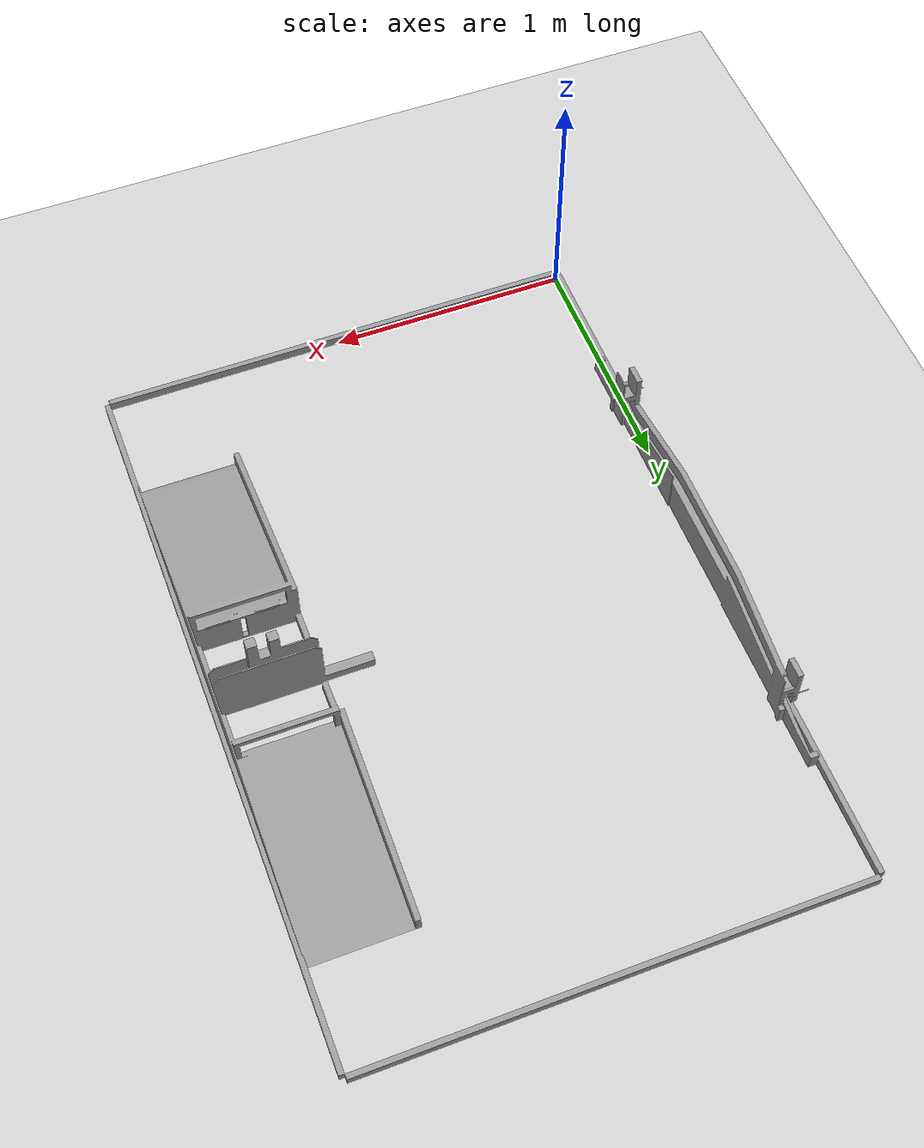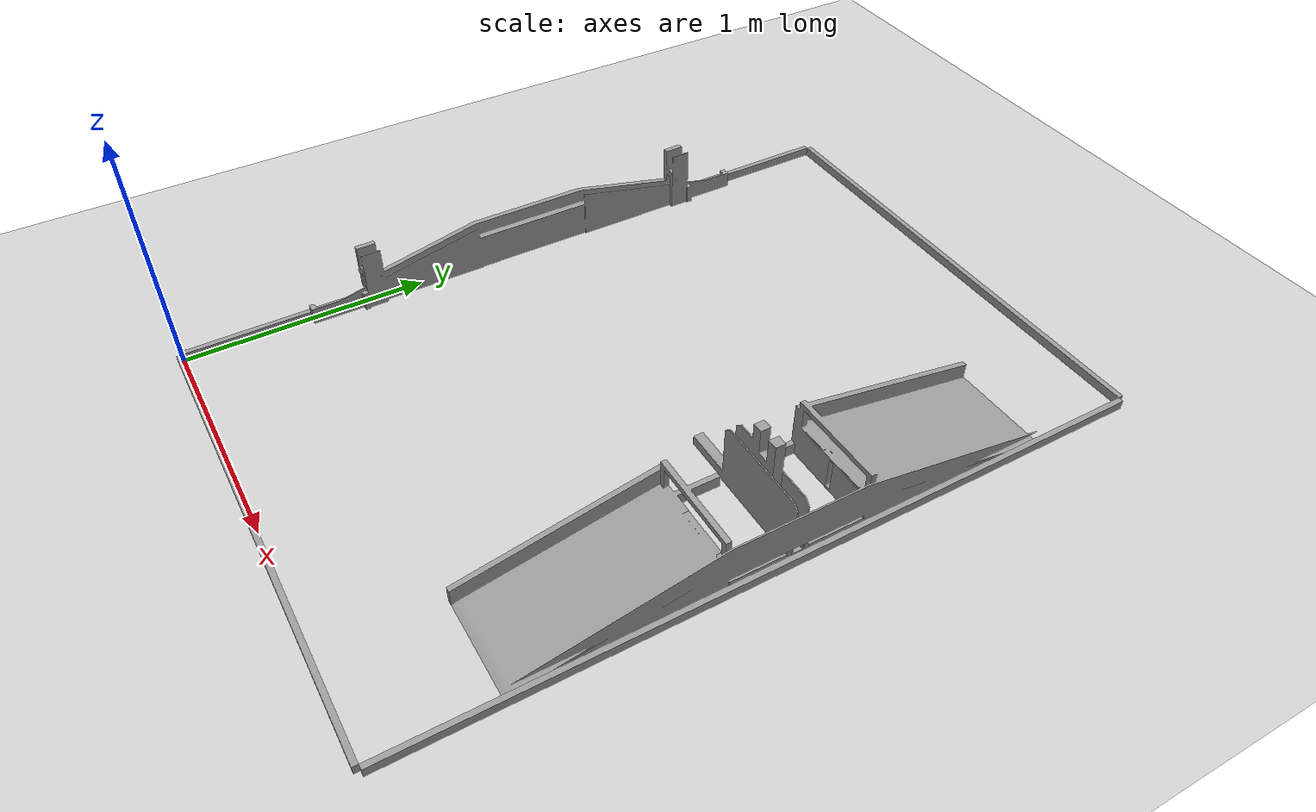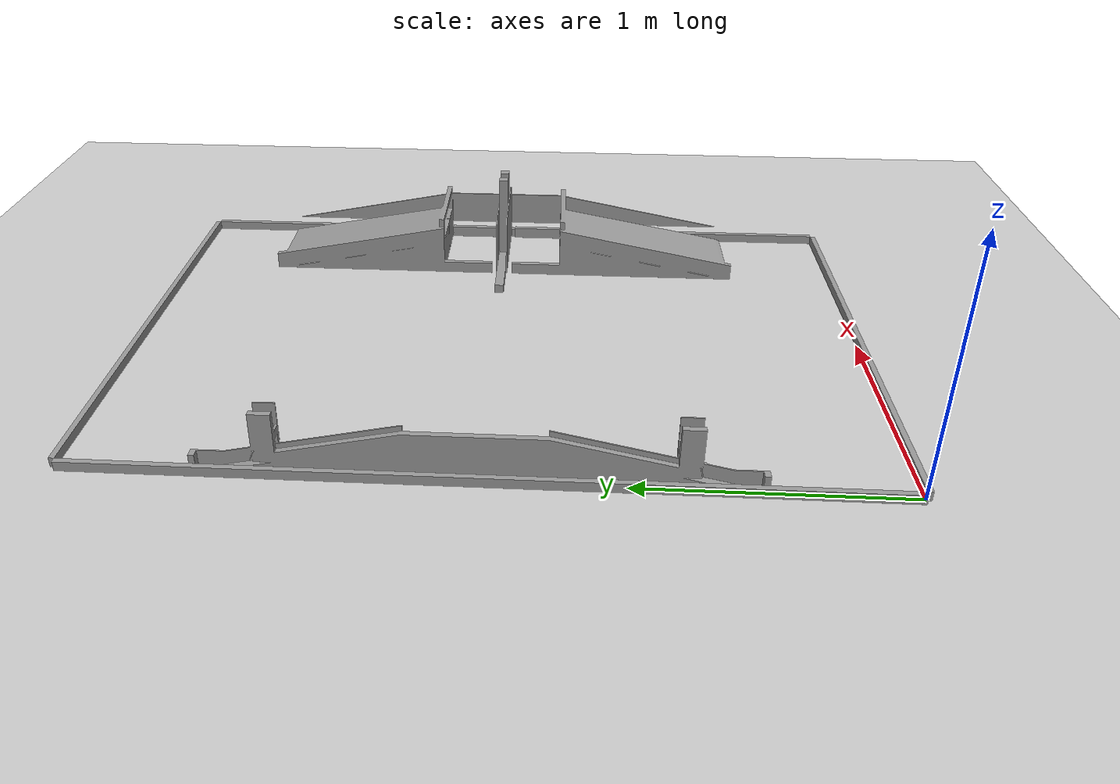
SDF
<?xml version="1.0" ?>
<sdf version="1.5">
	<world name="default">
		<!-- A global light source -->
		<include>
			<uri>model://sun</uri>
		</include>
		<!-- A ground plane -->
		<include>
			<uri>model://ground_plane</uri>
		</include>
		<!-- Elements -->
		<include>
      		<uri>model://accelerateur</uri>
			<static>true</static>
      		<pose>0.057 0.500 0 0 0 1.5708</pose>
    	</include>
		<include>
      		<uri>model://balance</uri>
			<static>true</static>
      		<pose>2.006 1.548 0 0 0 3.141592</pose>
    	</include>
		<include>
      		<uri>model://rampe</uri>
			<static>true</static>
      		<pose>2.010 0.450 0 0 0 1.5708</pose>
    	</include>
		<!-- Wall -->
		<include>
      		<uri>model://wall_2m</uri>
			<static>true</static>
      		<pose>1 -0.011 0 0 0 0</pose>
    	</include>
		<include>
      		<uri>model://wall_2m</uri>
			<static>true</static>
      		<pose>1 3.011 0 0 0 0</pose>
    	</include>
		<include>
      		<uri>model://wall_3m</uri>
			<static>true</static>
      		<pose>-0.011 1.5 0 0 0 0</pose>
    	</include>
		<include>
      		<uri>model://wall_3m</uri>
			<static>true</static>
      		<pose>2.011 1.5 0 0 0 0</pose>
    	</include>
	</world>
</sdf>

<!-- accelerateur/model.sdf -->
<sdf version="1.5">
    <model name="accelerateur">
        <static>false</static>
        <link name="table_accelerator">
            <collision name="collision">
                <geometry>
                    <mesh>
                        <uri>model://accelerateur/meshes/assemblage1.STL</uri>
                        <scale>0.001 0.001 0.001</scale>
                    </mesh>
                </geometry>
                <surface>
                    <friction>
                        <ode>
                            <mu>100</mu>
                            <mu2>50</mu2>
                        </ode>
                    </friction>
                </surface>
            </collision>
            <visual name="visual">
                <geometry>
                    <mesh>
                        <uri>model://accelerateur/meshes/assemblage1.STL</uri>
                        <scale>0.001 0.001 0.001</scale>
                    </mesh>
                </geometry>
                <material>
                    <script>
                        <uri>file://media/materials/scripts/gazebo.material</uri>
                        <name>Gazebo/Grey</name>
                    </script>
                </material>
            </visual>
        </link>
    </model>
</sdf>

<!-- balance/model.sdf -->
<sdf version="1.5">
    <model name="table_balance">
        <static>false</static>
        <link name="link">
            <collision name="collision">
                <geometry>
                    <mesh>
                        <uri>model://balance/meshes/assemblage1.STL</uri>
                        <scale>0.001 0.001 0.001</scale>
                    </mesh>
                </geometry>
                <surface>
                    <friction>
                        <ode>
                            <mu>100</mu>
                            <mu2>50</mu2>
                        </ode>
                    </friction>
                </surface>
            </collision>
            <visual name="visual">
                <geometry>
                    <mesh>
                        <uri>model://balance/meshes/assemblage1.STL</uri>
                        <scale>0.001 0.001 0.001</scale>
                    </mesh>
                </geometry>
                <material>
                    <script>
                        <uri>file://media/materials/scripts/gazebo.material</uri>
                        <name>Gazebo/Grey</name>
                    </script>
                </material>
            </visual>
        </link>
    </model>
</sdf>

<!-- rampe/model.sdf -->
<sdf version="1.5">
    <model name="rampe">
        <static>false</static>
        <link name="table_rampe">
            <collision name="collision">
                <geometry>
                    <mesh>
                        <uri>model://rampe/meshes/assemblage1.STL</uri>
                        <scale>0.001 0.001 0.001</scale>
                    </mesh>
                </geometry>
                <surface>
                    <friction>
                        <ode>
                            <mu>100</mu>
                            <mu2>50</mu2>
                        </ode>
                    </friction>
                </surface>
            </collision>
            <visual name="visual">
                <geometry>
                    <mesh>
                        <uri>model://rampe/meshes/assemblage1.STL</uri>
                        <scale>0.001 0.001 0.001</scale>
                    </mesh>
                </geometry>
                <material>
                    <script>
                        <uri>file://media/materials/scripts/gazebo.material</uri>
                        <name>Gazebo/Grey</name>
                    </script>
                </material>
            </visual>
        </link>
    </model>
</sdf>

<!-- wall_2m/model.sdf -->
<sdf version="1.5">
    <model name="wall_2m">
        <static>false</static>
        <link name="table_wall_2m">
            <collision name="collision">
                <geometry>
                    <box>
                        <size>2 0.022 0.070</size>
                    </box>
                </geometry>
                <surface>
                    <friction>
                        <ode>
                            <mu>100</mu>
                            <mu2>50</mu2>
                        </ode>
                    </friction>
                </surface>
            </collision>
            <visual name="visual">
                <geometry>
                    <box>
                        <size>2 0.022 0.070</size>
                    </box>
                </geometry>
                <material>
                    <script>
                        <uri>file://media/materials/scripts/gazebo.material</uri>
                        <name>Gazebo/Grey</name>
                    </script>
                </material>
            </visual>
        </link>
    </model>
</sdf>

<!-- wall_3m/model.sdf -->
<sdf version="1.5">
    <model name="wall_3m">
        <static>false</static>
        <link name="table_wall_3m">
            <collision name="collision">
                <geometry>
                    <box>
                        <size>0.022 3 0.070</size>
                    </box>
                </geometry>
                <surface>
                    <friction>
                        <ode>
                            <mu>100</mu>
                            <mu2>50</mu2>
                        </ode>
                    </friction>
                </surface>
            </collision>
            <visual name="visual">
                <geometry>
                    <box>
                        <size>0.022 3 0.070</size>
                    </box>
                </geometry>
                <material>
                    <script>
                        <uri>file://media/materials/scripts/gazebo.material</uri>
                        <name>Gazebo/Grey</name>
                    </script>
                </material>
            </visual>
        </link>
    </model>
</sdf>
